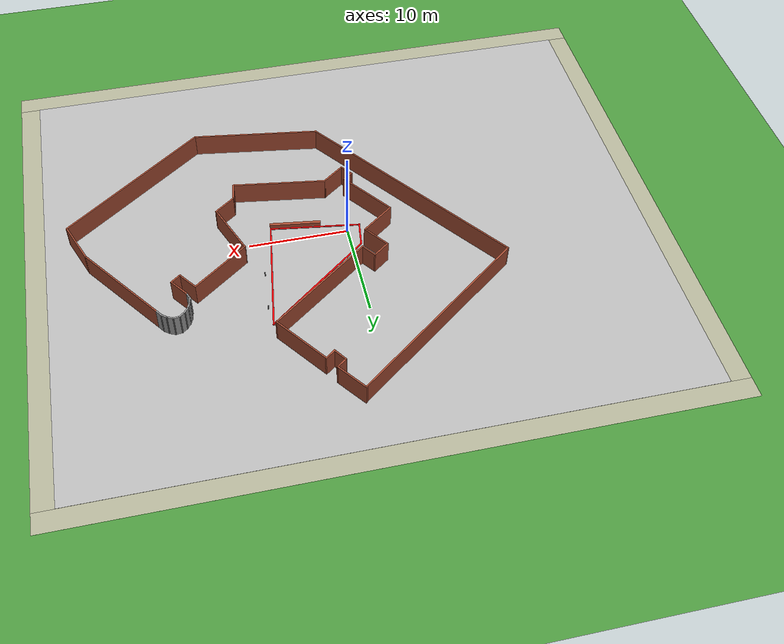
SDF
<sdf version="1.6">
 <world name="default">
  <physics name="default_physics" default="0" type="ode">
   <ode>
    <solver>
     <type>quick</type>
     <iters>100</iters>
     <sor>1</sor>
     <use_dynamic_moi_rescaling>0</use_dynamic_moi_rescaling>
    </solver>
    <constraints>
     <cfm>0</cfm>
     <erp>0.2</erp>
     <contact_max_correcting_vel>0.1</contact_max_correcting_vel>
     <contact_surface_layer>0</contact_surface_layer>
    </constraints>
   </ode>
   <real_time_update_rate>0</real_time_update_rate>
   <max_step_size>0.0025</max_step_size>
   <real_time_factor>1</real_time_factor>
  </physics>
  <light name="sun" type="directional">
   <pose>0 0 10 0 -0 0</pose>
   <diffuse>0.8 0.8 0.8 1</diffuse>
   <specular>0.2 0.2 0.2 1</specular>
   <attenuation>
    <range>1000</range>
    <constant>0.9</constant>
    <linear>0.01</linear>
    <quadratic>0.001</quadratic>
   </attenuation>
   <direction>-0.5 0.1 -0.9</direction>
  </light>
  <model name="ground_plane">
   <static>1</static>
   <link name="link">
    <collision name="collision">
     <geometry><plane><normal>0 0 1</normal><size>5000 5000</size></plane></geometry>
     <surface><friction><ode><mu>1</mu><mu2>1</mu2></ode></friction></surface>
    </collision>
    <visual name="grass">
     <pose>0 0 -0.1 0 -0 0</pose>
     <cast_shadows>0</cast_shadows>
     <geometry><plane><normal>0 0 0</normal><size>5000 5000</size></plane></geometry>
     <material>
      <script><uri>file://media/materials/scripts/gazebo.material</uri><name>Gazebo/Grass</name></script>
     </material>
    </visual>
   </link>
  </model>
  <gravity>0 0 -9.8</gravity>
  <magnetic_field>6e-06 2.3e-05 -4.2e-05</magnetic_field>
  <atmosphere type="adiabatic"/>
  <scene><ambient>0.4 0.4 0.4 1</ambient><background>0.7 0.7 0.7 1</background><shadows>1</shadows></scene>
  <spherical_coordinates>
   <surface_model>EARTH_WGS84</surface_model>
   <latitude_deg>0</latitude_deg>
   <longitude_deg>0</longitude_deg>
   <elevation>0</elevation>
   <heading_deg>0</heading_deg>
  </spherical_coordinates>
  <model name="robocup_3d_field">
   <static>1</static>
   <link name="field">
    <pose>0 0 0.01 0 -0 0</pose>
    <collision name="collision">
     <geometry><plane><normal>0 0 1</normal><size>30 20</size></plane></geometry>
     <surface><friction><ode><mu>100</mu><mu2>50</mu2></ode></friction></surface>
    </collision>
    <visual name="base1">
     <pose>0 26 0.001 0 -0 0</pose>
     <cast_shadows>0</cast_shadows>
     <geometry><plane><normal>0 0 1</normal><size>64 2</size></plane></geometry>
     <material>
      <script><uri>file://media/materials/scripts/gazebo.material</uri><name>Gazebo/Residential</name></script>
     </material>
    </visual>
    <visual name="base2">
     <pose>0 -26 0.001 0 -0 0</pose>
     <cast_shadows>0</cast_shadows>
     <geometry><plane><normal>0 0 1</normal><size>64 2</size></plane></geometry>
     <material>
      <script><uri>file://media/materials/scripts/gazebo.material</uri><name>Gazebo/Residential</name></script>
     </material>
    </visual>
    <visual name="base3">
     <pose>31 0 0.001 0 -0 0</pose>
     <cast_shadows>0</cast_shadows>
     <geometry><plane><normal>0 0 1</normal><size>2 50</size></plane></geometry>
     <material>
      <script><uri>file://media/materials/scripts/gazebo.material</uri><name>Gazebo/Residential</name></script>
     </material>
    </visual>
    <visual name="base4">
     <pose>-31 0 0.001 0 -0 0</pose>
     <cast_shadows>0</cast_shadows>
     <geometry><plane><normal>0 0 1</normal><size>2 50</size></plane></geometry>
     <material>
      <script><uri>file://media/materials/scripts/gazebo.material</uri><name>Gazebo/Residential</name></script>
     </material>
    </visual>
    <visual name="carpet">
     <cast_shadows>0</cast_shadows>
     <geometry><plane><normal>0 0 1</normal><size>60 50</size></plane></geometry>
     <material>
      <script>
       <uri>model://robocup_3Dsim_field/materials/scripts/</uri>
       <uri>model://robocup_3Dsim_field/materials/textures/</uri>
       <name>RoboCup/Granite</name>
      </script>
     </material>
    </visual>
   </link>
   <pose>0.007311 -0.081077 0 0 -0 0</pose>
  </model>
  <model name="CompBounds">
   <pose>3.96099 4.73051 0 0 -0 1.43129</pose>
   <link name="Wall_11">
    <collision name="Wall_11_Collision">
     <geometry><box><size>9.144 0.15 0.1</size></box></geometry>
     <pose>0 0 0.05 0 -0 0</pose>
    </collision>
    <visual name="Wall_11_Visual">
     <pose>0 0 0.05 0 -0 0</pose>
     <geometry><box><size>9.144 0.15 0.1</size></box></geometry>
     <material>
      <script><uri>file://media/materials/scripts/gazebo.material</uri><name>Gazebo/Grey</name></script>
      <ambient>1 0 0.0156863 1</ambient>
     </material>
     <meta><layer>0</layer></meta>
    </visual>
    <pose>-6.03653 0 0 0 0 -1.5708</pose>
   </link>
   <link name="Wall_13">
    <collision name="Wall_13_Collision">
     <geometry><box><size>12.192 0.15 0.1</size></box></geometry>
     <pose>0 0 0.05 0 -0 0</pose>
    </collision>
    <visual name="Wall_13_Visual">
     <pose>0 0 0.05 0 -0 0</pose>
     <geometry><box><size>12.192 0.15 0.1</size></box></geometry>
     <material>
      <script><uri>file://media/materials/scripts/gazebo.material</uri><name>Gazebo/Grey</name></script>
      <ambient>1 0 0.0156863 1</ambient>
     </material>
     <meta><layer>0</layer></meta>
    </visual>
    <pose>-0.015526 -4.497 0 0 -0 0</pose>
   </link>
   <link name="Wall_15">
    <collision name="Wall_15_Collision">
     <geometry><box><size>13.1952 0.15 0.1</size></box></geometry>
     <pose>0 0 0.05 0 -0 0</pose>
    </collision>
    <visual name="Wall_15_Visual">
     <pose>0 0 0.05 0 -0 0</pose>
     <geometry><box><size>13.1952 0.15 0.1</size></box></geometry>
     <material>
      <script><uri>file://media/materials/scripts/gazebo.material</uri><name>Gazebo/Grey</name></script>
      <ambient>1 0 0.0156863 1</ambient>
     </material>
     <meta><layer>0</layer></meta>
    </visual>
    <pose>1.28097 0 0 0 -0 2.38086</pose>
   </link>
   <link name="Wall_9">
    <collision name="Wall_9_Collision">
     <geometry><box><size>2.743 0.15 0.1</size></box></geometry>
     <pose>0 0 0.05 0 -0 0</pose>
    </collision>
    <visual name="Wall_9_Visual">
     <pose>0 0 0.05 0 -0 0</pose>
     <geometry><box><size>2.743 0.15 0.1</size></box></geometry>
     <material>
      <script><uri>file://media/materials/scripts/gazebo.material</uri><name>Gazebo/Grey</name></script>
      <ambient>1 0 0.0156863 1</ambient>
     </material>
     <meta><layer>0</layer></meta>
    </visual>
    <pose>-4.74003 4.497 0 0 -0 0</pose>
   </link>
   <static>1</static>
  </model>
  <model name="EngBusBldg">
   <pose>6.75813 3.12536 0 0 -0 1.42972</pose>
   <link name="Wall_17">
    <collision name="Wall_17_Collision">
     <geometry><box><size>12.25 0.15 2.5</size></box></geometry>
     <pose>0 0 1.25 0 -0 0</pose>
    </collision>
    <visual name="Wall_17_Visual">
     <pose>0 0 1.25 0 -0 0</pose>
     <geometry><box><size>12.25 0.15 2.5</size></box></geometry>
     <material>
      <script><uri>file://media/materials/scripts/gazebo.material</uri><name>Gazebo/Bricks</name></script>
      <ambient>1 1 1 1</ambient>
     </material>
     <meta><layer>0</layer></meta>
    </visual>
    <pose>4.46905 3.12636 0 0 0 -0.785398</pose>
   </link>
   <link name="Wall_19">
    <collision name="Wall_19_Collision">
     <geometry><box><size>1.75 0.15 2.5</size></box></geometry>
     <pose>0 0 1.25 0 -0 0</pose>
    </collision>
    <visual name="Wall_19_Visual">
     <pose>0 0 1.25 0 -0 0</pose>
     <geometry><box><size>1.75 0.15 2.5</size></box></geometry>
     <material>
      <script><uri>file://media/materials/scripts/gazebo.material</uri><name>Gazebo/Bricks</name></script>
      <ambient>1 1 1 1</ambient>
     </material>
     <meta><layer>0</layer></meta>
    </visual>
    <pose>0.756547 7.97036 0 0 -0 0.78584</pose>
   </link>
   <link name="Wall_20">
    <collision name="Wall_20_Collision">
     <geometry><box><size>2 0.15 2.5</size></box></geometry>
     <pose>0 0 1.25 0 -0 0</pose>
    </collision>
    <visual name="Wall_20_Visual">
     <pose>0 0 1.25 0 -0 0</pose>
     <geometry><box><size>2 0.15 2.5</size></box></geometry>
     <material>
      <script><uri>file://media/materials/scripts/gazebo.material</uri><name>Gazebo/Bricks</name></script>
      <ambient>1 1 1 1</ambient>
     </material>
     <meta><layer>0</layer></meta>
    </visual>
    <pose>0.668047 9.19036 0 0 -0 2.35619</pose>
   </link>
   <link name="Wall_21">
    <collision name="Wall_21_Collision">
     <geometry><box><size>3 0.15 2.5</size></box></geometry>
     <pose>0 0 1.25 0 -0 0</pose>
    </collision>
    <visual name="Wall_21_Visual">
     <pose>0 0 1.25 0 -0 0</pose>
     <geometry><box><size>3 0.15 2.5</size></box></geometry>
     <material>
      <script><uri>file://media/materials/scripts/gazebo.material</uri><name>Gazebo/Bricks</name></script>
      <ambient>1 1 1 1</ambient>
     </material>
     <meta><layer>0</layer></meta>
    </visual>
    <pose>-0.993453 8.83636 0 0 0 -2.35595</pose>
   </link>
   <link name="Wall_22">
    <collision name="Wall_22_Collision">
     <geometry><box><size>4 0.15 2.5</size></box></geometry>
     <pose>0 0 1.25 0 -0 0</pose>
    </collision>
    <visual name="Wall_22_Visual">
     <pose>0 0 1.25 0 -0 0</pose>
     <geometry><box><size>4 0.15 2.5</size></box></geometry>
     <material>
      <script><uri>file://media/materials/scripts/gazebo.material</uri><name>Gazebo/Bricks</name></script>
      <ambient>1 1 1 1</ambient>
     </material>
     <meta><layer>0</layer></meta>
    </visual>
    <pose>-3.36245 9.18986 0 0 -0 2.35619</pose>
   </link>
   <link name="Wall_24">
    <collision name="Wall_24_Collision">
     <geometry><box><size>6.25 0.15 2.5</size></box></geometry>
     <pose>0 0 1.25 0 -0 0</pose>
    </collision>
    <visual name="Wall_24_Visual">
     <pose>0 0 1.25 0 -0 0</pose>
     <geometry><box><size>6.25 0.15 2.5</size></box></geometry>
     <material>
      <script><uri>file://media/materials/scripts/gazebo.material</uri><name>Gazebo/Bricks</name></script>
      <ambient>1 1 1 1</ambient>
     </material>
     <meta><layer>0</layer></meta>
    </visual>
    <pose>-6.88045 8.39436 0 0 0 -2.35608</pose>
   </link>
   <link name="Wall_25">
    <collision name="Wall_25_Collision">
     <geometry><box><size>1.25 0.15 2.5</size></box></geometry>
     <pose>0 0 1.25 0 -0 0</pose>
    </collision>
    <visual name="Wall_25_Visual">
     <pose>0 0 1.25 0 -0 0</pose>
     <geometry><box><size>1.25 0.15 2.5</size></box></geometry>
     <material>
      <script><uri>file://media/materials/scripts/gazebo.material</uri><name>Gazebo/Bricks</name></script>
      <ambient>1 1 1 1</ambient>
     </material>
     <meta><layer>0</layer></meta>
    </visual>
    <pose>-9.42595 6.62636 0 0 -0 2.35619</pose>
   </link>
   <link name="Wall_26">
    <collision name="Wall_26_Collision">
     <geometry><box><size>1.5 0.15 2.5</size></box></geometry>
     <pose>0 0 1.25 0 -0 0</pose>
    </collision>
    <visual name="Wall_26_Visual">
     <pose>0 0 1.25 0 -0 0</pose>
     <geometry><box><size>1.5 0.15 2.5</size></box></geometry>
     <material>
      <script><uri>file://media/materials/scripts/gazebo.material</uri><name>Gazebo/Bricks</name></script>
      <ambient>1 1 1 1</ambient>
     </material>
     <meta><layer>0</layer></meta>
    </visual>
    <pose>-10.292 6.53836 0 0 0 -2.35619</pose>
   </link>
   <link name="Wall_27">
    <collision name="Wall_27_Collision">
     <geometry><box><size>2.75 0.15 2.5</size></box></geometry>
     <pose>0 0 1.25 0 -0 0</pose>
    </collision>
    <visual name="Wall_27_Visual">
     <pose>0 0 1.25 0 -0 0</pose>
     <geometry><box><size>2.75 0.15 2.5</size></box></geometry>
     <material>
      <script><uri>file://media/materials/scripts/gazebo.material</uri><name>Gazebo/Bricks</name></script>
      <ambient>1 1 1 1</ambient>
     </material>
     <meta><layer>0</layer></meta>
    </visual>
    <pose>-9.84995 5.14186 0 0 0 -0.78567</pose>
   </link>
   <link name="Wall_40">
    <collision name="Wall_40_Collision">
     <geometry><box><size>9.5 0.15 2.5</size></box></geometry>
     <pose>0 0 1.25 0 -0 0</pose>
    </collision>
    <visual name="Wall_40_Visual">
     <pose>0 0 1.25 0 -0 0</pose>
     <geometry><box><size>9.5 0.15 2.5</size></box></geometry>
     <material>
      <script><uri>file://media/materials/scripts/gazebo.material</uri><name>Gazebo/Bricks</name></script>
      <ambient>1 1 1 1</ambient>
     </material>
     <meta><layer>0</layer></meta>
    </visual>
    <pose>-8.93095 -0.452644 0 0 0 -1.5708</pose>
   </link>
   <link name="Wall_41">
    <collision name="Wall_41_Collision">
     <geometry><box><size>2 0.15 2.5</size></box></geometry>
     <pose>0 0 1.25 0 -0 0</pose>
    </collision>
    <visual name="Wall_41_Visual">
     <pose>0 0 1.25 0 -0 0</pose>
     <geometry><box><size>2 0.15 2.5</size></box></geometry>
     <material>
      <script><uri>file://media/materials/scripts/gazebo.material</uri><name>Gazebo/Bricks</name></script>
      <ambient>1 1 1 1</ambient>
     </material>
     <meta><layer>0</layer></meta>
    </visual>
    <pose>-8.00595 -5.12764 0 0 -0 0</pose>
   </link>
   <link name="Wall_42">
    <collision name="Wall_42_Collision">
     <geometry><box><size>2.5 0.15 2.5</size></box></geometry>
     <pose>0 0 1.25 0 -0 0</pose>
    </collision>
    <visual name="Wall_42_Visual">
     <pose>0 0 1.25 0 -0 0</pose>
     <geometry><box><size>2.5 0.15 2.5</size></box></geometry>
     <material>
      <script><uri>file://media/materials/scripts/gazebo.material</uri><name>Gazebo/Bricks</name></script>
      <ambient>1 1 1 1</ambient>
     </material>
     <meta><layer>0</layer></meta>
    </visual>
    <pose>-6.24995 -5.95814 0 0 0 -0.785097</pose>
   </link>
   <link name="Wall_43">
    <collision name="Wall_43_Collision">
     <geometry><box><size>5.75 0.15 2.5</size></box></geometry>
     <pose>0 0 1.25 0 -0 0</pose>
    </collision>
    <visual name="Wall_43_Visual">
     <pose>0 0 1.25 0 -0 0</pose>
     <geometry><box><size>5.75 0.15 2.5</size></box></geometry>
     <material>
      <script><uri>file://media/materials/scripts/gazebo.material</uri><name>Gazebo/Bricks</name></script>
      <ambient>1 1 1 1</ambient>
     </material>
     <meta><layer>0</layer></meta>
    </visual>
    <pose>-2.99445 -5.38864 0 0 -0 0.523665</pose>
   </link>
   <link name="Wall_45">
    <collision name="Wall_45_Collision">
     <geometry><box><size>6.75 0.15 2.5</size></box></geometry>
     <pose>0 0 1.25 0 -0 0</pose>
    </collision>
    <visual name="Wall_45_Visual">
     <pose>0 0 1.25 0 -0 0</pose>
     <geometry><box><size>6.75 0.15 2.5</size></box></geometry>
     <material>
      <script><uri>file://media/materials/scripts/gazebo.material</uri><name>Gazebo/Bricks</name></script>
      <ambient>1 1 1 1</ambient>
     </material>
     <meta><layer>0</layer></meta>
    </visual>
    <pose>1.76355 -6.32214 0 0 0 -0.785398</pose>
   </link>
   <link name="Wall_47">
    <collision name="Wall_47_Collision">
     <geometry><box><size>2.25 0.15 2.5</size></box></geometry>
     <pose>0 0 1.25 0 -0 0</pose>
    </collision>
    <visual name="Wall_47_Visual">
     <pose>0 0 1.25 0 -0 0</pose>
     <geometry><box><size>2.25 0.15 2.5</size></box></geometry>
     <material>
      <script><uri>file://media/materials/scripts/gazebo.material</uri><name>Gazebo/Bricks</name></script>
      <ambient>1 1 1 1</ambient>
     </material>
     <meta><layer>0</layer></meta>
    </visual>
    <pose>3.35455 -9.39814 0 0 0 -2.35619</pose>
   </link>
   <link name="Wall_48">
    <collision name="Wall_48_Collision">
     <geometry><box><size>1.25 0.15 2.5</size></box></geometry>
     <pose>0 0 1.25 0 -0 0</pose>
    </collision>
    <visual name="Wall_48_Visual">
     <pose>0 0 1.25 0 -0 0</pose>
     <geometry><box><size>1.25 0.15 2.5</size></box></geometry>
     <material>
      <script><uri>file://media/materials/scripts/gazebo.material</uri><name>Gazebo/Bricks</name></script>
      <ambient>1 1 1 1</ambient>
     </material>
     <meta><layer>0</layer></meta>
    </visual>
    <pose>3.00105 -10.5296 0 0 0 -0.785398</pose>
   </link>
   <link name="Wall_49">
    <collision name="Wall_49_Collision">
     <geometry><box><size>2.25 0.15 2.5</size></box></geometry>
     <pose>0 0 1.25 0 -0 0</pose>
    </collision>
    <visual name="Wall_49_Visual">
     <pose>0 0 1.25 0 -0 0</pose>
     <geometry><box><size>2.25 0.15 2.5</size></box></geometry>
     <material>
      <script><uri>file://media/materials/scripts/gazebo.material</uri><name>Gazebo/Bricks</name></script>
      <ambient>1 1 1 1</ambient>
     </material>
     <meta><layer>0</layer></meta>
    </visual>
    <pose>4.13255 -10.1761 0 0 -0 0.785398</pose>
   </link>
   <link name="Wall_51">
    <collision name="Wall_51_Collision">
     <geometry><box><size>0.75 0.15 2.5</size></box></geometry>
     <pose>0 0 1.25 0 -0 0</pose>
    </collision>
    <visual name="Wall_51_Visual">
     <pose>0 0 1.25 0 -0 0</pose>
     <geometry><box><size>0.75 0.15 2.5</size></box></geometry>
     <material>
      <script><uri>file://media/materials/scripts/gazebo.material</uri><name>Gazebo/Grey</name></script>
      <ambient>0 0 0 1</ambient>
     </material>
     <meta><layer>0</layer></meta>
    </visual>
    <pose>5.13496 -9.28375 0 0 -0 0.52313</pose>
   </link>
   <link name="Wall_53">
    <collision name="Wall_53_Collision">
     <geometry><box><size>0.75 0.15 2.5</size></box></geometry>
     <pose>0 0 1.25 0 -0 0</pose>
    </collision>
    <visual name="Wall_53_Visual">
     <pose>0 0 1.25 0 -0 0</pose>
     <geometry><box><size>0.75 0.15 2.5</size></box></geometry>
     <material>
      <script><uri>file://media/materials/scripts/gazebo.material</uri><name>Gazebo/Grey</name></script>
      <ambient>0 0 0 1</ambient>
     </material>
     <meta><layer>0</layer></meta>
    </visual>
    <pose>5.69487 -9.13385 0 0 -0 0</pose>
   </link>
   <link name="Wall_54">
    <collision name="Wall_54_Collision">
     <geometry><box><size>0.75 0.15 2.5</size></box></geometry>
     <pose>0 0 1.25 0 -0 0</pose>
    </collision>
    <visual name="Wall_54_Visual">
     <pose>0 0 1.25 0 -0 0</pose>
     <geometry><box><size>0.75 0.15 2.5</size></box></geometry>
     <material>
      <script><uri>file://media/materials/scripts/gazebo.material</uri><name>Gazebo/Grey</name></script>
      <ambient>0 0 0 1</ambient>
     </material>
     <meta><layer>0</layer></meta>
    </visual>
    <pose>6.28465 -9.21149 0 0 0 -0.261799</pose>
   </link>
   <link name="Wall_55">
    <collision name="Wall_55_Collision">
     <geometry><box><size>0.75 0.15 2.5</size></box></geometry>
     <pose>0 0 1.25 0 -0 0</pose>
    </collision>
    <visual name="Wall_55_Visual">
     <pose>0 0 1.25 0 -0 0</pose>
     <geometry><box><size>0.75 0.15 2.5</size></box></geometry>
     <material>
      <script><uri>file://media/materials/scripts/gazebo.material</uri><name>Gazebo/Grey</name></script>
      <ambient>0 0 0 1</ambient>
     </material>
     <meta><layer>0</layer></meta>
    </visual>
    <pose>6.83423 -9.43914 0 0 0 -0.523599</pose>
   </link>
   <link name="Wall_56">
    <collision name="Wall_56_Collision">
     <geometry><box><size>0.75 0.15 2.5</size></box></geometry>
     <pose>0 0 1.25 0 -0 0</pose>
    </collision>
    <visual name="Wall_56_Visual">
     <pose>0 0 1.25 0 -0 0</pose>
     <geometry><box><size>0.75 0.15 2.5</size></box></geometry>
     <material>
      <script><uri>file://media/materials/scripts/gazebo.material</uri><name>Gazebo/Grey</name></script>
      <ambient>0 0 0 1</ambient>
     </material>
     <meta><layer>0</layer></meta>
    </visual>
    <pose>7.30617 -9.80127 0 0 0 -0.785398</pose>
   </link>
   <link name="Wall_57">
    <collision name="Wall_57_Collision">
     <geometry><box><size>0.75 0.15 2.5</size></box></geometry>
     <pose>0 0 1.25 0 -0 0</pose>
    </collision>
    <visual name="Wall_57_Visual">
     <pose>0 0 1.25 0 -0 0</pose>
     <geometry><box><size>0.75 0.15 2.5</size></box></geometry>
     <material>
      <script><uri>file://media/materials/scripts/gazebo.material</uri><name>Gazebo/Grey</name></script>
      <ambient>0 0 0 1</ambient>
     </material>
     <meta><layer>0</layer></meta>
    </visual>
    <pose>7.59595 -10.3032 0 0 0 -1.309</pose>
   </link>
   <link name="Wall_59">
    <collision name="Wall_59_Collision">
     <geometry><box><size>0.75 0.15 2.5</size></box></geometry>
     <pose>0 0 1.25 0 -0 0</pose>
    </collision>
    <visual name="Wall_59_Visual">
     <pose>0 0 1.25 0 -0 0</pose>
     <geometry><box><size>0.75 0.15 2.5</size></box></geometry>
     <material>
      <script><uri>file://media/materials/scripts/gazebo.material</uri><name>Gazebo/Grey</name></script>
      <ambient>0 0 0 1</ambient>
     </material>
     <meta><layer>0</layer></meta>
    </visual>
    <pose>7.59595 -10.8827 0 0 0 -1.8326</pose>
   </link>
   <link name="Wall_60">
    <collision name="Wall_60_Collision">
     <geometry><box><size>0.75 0.15 2.5</size></box></geometry>
     <pose>0 0 1.25 0 -0 0</pose>
    </collision>
    <visual name="Wall_60_Visual">
     <pose>0 0 1.25 0 -0 0</pose>
     <geometry><box><size>0.75 0.15 2.5</size></box></geometry>
     <material>
      <script><uri>file://media/materials/scripts/gazebo.material</uri><name>Gazebo/Grey</name></script>
      <ambient>0 0 0 1</ambient>
     </material>
     <meta><layer>0</layer></meta>
    </visual>
    <pose>7.3683 -11.4323 0 0 0 -2.0944</pose>
   </link>
   <link name="Wall_62">
    <collision name="Wall_62_Collision">
     <geometry><box><size>0.75 0.15 2.5</size></box></geometry>
     <pose>0 0 1.25 0 -0 0</pose>
    </collision>
    <visual name="Wall_62_Visual">
     <pose>0 0 1.25 0 -0 0</pose>
     <geometry><box><size>0.75 0.15 2.5</size></box></geometry>
     <material>
      <script><uri>file://media/materials/scripts/gazebo.material</uri><name>Gazebo/Grey</name></script>
      <ambient>0 0 0 1</ambient>
     </material>
     <meta><layer>0</layer></meta>
    </visual>
    <pose>7.00618 -11.9044 0 0 0 -2.35589</pose>
   </link>
   <link name="Wall_63">
    <collision name="Wall_63_Collision">
     <geometry><box><size>10.25 0.15 2.5</size></box></geometry>
     <pose>0 0 1.25 0 -0 0</pose>
    </collision>
    <visual name="Wall_63_Visual">
     <pose>0 0 1.25 0 -0 0</pose>
     <geometry><box><size>10.25 0.15 2.5</size></box></geometry>
     <material>
      <script><uri>file://media/materials/scripts/gazebo.material</uri><name>Gazebo/Bricks</name></script>
      <ambient>1 1 1 1</ambient>
     </material>
     <meta><layer>0</layer></meta>
    </visual>
    <pose>3.22305 -15.6876 0 0 0 -2.35619</pose>
   </link>
   <link name="Wall_65">
    <collision name="Wall_65_Collision">
     <geometry><box><size>6.25 0.15 2.5</size></box></geometry>
     <pose>0 0 1.25 0 -0 0</pose>
    </collision>
    <visual name="Wall_65_Visual">
     <pose>0 0 1.25 0 -0 0</pose>
     <geometry><box><size>6.25 0.15 2.5</size></box></geometry>
     <material>
      <script><uri>file://media/materials/scripts/gazebo.material</uri><name>Gazebo/Bricks</name></script>
      <ambient>1 1 1 1</ambient>
     </material>
     <meta><layer>0</layer></meta>
    </visual>
    <pose>10.9035 1.00536 0 0 -0 0.785514</pose>
   </link>
   <link name="Wall_67">
    <collision name="Wall_67_Collision">
     <geometry><box><size>1.25 0.15 2.5</size></box></geometry>
     <pose>0 0 1.25 0 -0 0</pose>
    </collision>
    <visual name="Wall_67_Visual">
     <pose>0 0 1.25 0 -0 0</pose>
     <geometry><box><size>1.25 0.15 2.5</size></box></geometry>
     <material>
      <script><uri>file://media/materials/scripts/gazebo.material</uri><name>Gazebo/Bricks</name></script>
      <ambient>1 1 1 1</ambient>
     </material>
     <meta><layer>0</layer></meta>
    </visual>
    <pose>12.671 3.55086 0 0 -0 2.35684</pose>
   </link>
   <link name="Wall_68">
    <collision name="Wall_68_Collision">
     <geometry><box><size>1.53928 0.15 2.5</size></box></geometry>
     <pose>0 0 1.25 0 -0 0</pose>
    </collision>
    <visual name="Wall_68_Visual">
     <pose>0 0 1.25 0 -0 0</pose>
     <geometry><box><size>1.53928 0.15 2.5</size></box></geometry>
     <material>
      <script><uri>file://media/materials/scripts/gazebo.material</uri><name>Gazebo/Bricks</name></script>
      <ambient>0 0 0 1</ambient>
     </material>
     <meta><layer>0</layer></meta>
    </visual>
    <pose>12.7865 4.41686 0 0 -0 0.75791</pose>
   </link>
   <link name="Wall_69">
    <collision name="Wall_69_Collision">
     <geometry><box><size>1.24991 0.15 2.5</size></box></geometry>
     <pose>0 0 1.25 0 -0 0</pose>
    </collision>
    <visual name="Wall_69_Visual">
     <pose>0 0 1.25 0 -0 0</pose>
     <geometry><box><size>1.24991 0.15 2.5</size></box></geometry>
     <material>
      <script><uri>file://media/materials/scripts/gazebo.material</uri><name>Gazebo/Bricks</name></script>
      <ambient>0 0 0 1</ambient>
     </material>
     <meta><layer>0</layer></meta>
    </visual>
    <pose>13.6795 4.50536 0 0 0 -0.786041</pose>
   </link>
   <link name="Wall_70">
    <collision name="Wall_70_Collision">
     <geometry><box><size>3.4626 0.15 2.5</size></box></geometry>
     <pose>0 0 1.25 0 -0 0</pose>
    </collision>
    <visual name="Wall_70_Visual">
     <pose>0 0 1.25 0 -0 0</pose>
     <geometry><box><size>3.4626 0.15 2.5</size></box></geometry>
     <material>
      <script><uri>file://media/materials/scripts/gazebo.material</uri><name>Gazebo/Bricks</name></script>
      <ambient>0 0 0 1</ambient>
     </material>
     <meta><layer>0</layer></meta>
    </visual>
    <pose>15.2255 5.30086 0 0 -0 0.796926</pose>
   </link>
   <link name="Wall_73">
    <collision name="Wall_73_Collision">
     <geometry><box><size>4.5 0.15 2.5</size></box></geometry>
     <pose>0 0 1.25 0 -0 0</pose>
    </collision>
    <visual name="Wall_73_Visual">
     <pose>0 0 1.25 0 -0 0</pose>
     <geometry><box><size>4.5 0.15 2.5</size></box></geometry>
     <material>
      <script><uri>file://media/materials/scripts/gazebo.material</uri><name>Gazebo/Bricks</name></script>
      <ambient>0 0 0 1</ambient>
     </material>
     <meta><layer>0</layer></meta>
    </visual>
    <pose>-2.23145 -20.3461 0 0 0 -2.61797</pose>
   </link>
   <link name="Wall_75">
    <collision name="Wall_75_Collision">
     <geometry><box><size>17.5 0.15 2.5</size></box></geometry>
     <pose>0 0 1.25 0 -0 0</pose>
    </collision>
    <visual name="Wall_75_Visual">
     <pose>0 0 1.25 0 -0 0</pose>
     <geometry><box><size>17.5 0.15 2.5</size></box></geometry>
     <material>
      <script><uri>file://media/materials/scripts/gazebo.material</uri><name>Gazebo/Bricks</name></script>
      <ambient>1 1 1 1</ambient>
     </material>
     <meta><layer>0</layer></meta>
    </visual>
    <pose>-10.249 -15.2991 0 0 -0 2.35615</pose>
   </link>
   <link name="Wall_76">
    <collision name="Wall_76_Collision">
     <geometry><box><size>13 0.15 2.5</size></box></geometry>
     <pose>0 0 1.25 0 -0 0</pose>
    </collision>
    <visual name="Wall_76_Visual">
     <pose>0 0 1.25 0 -0 0</pose>
     <geometry><box><size>13 0.15 2.5</size></box></geometry>
     <material>
      <script><uri>file://media/materials/scripts/gazebo.material</uri><name>Gazebo/Bricks</name></script>
      <ambient>1 1 1 1</ambient>
     </material>
     <meta><layer>0</layer></meta>
    </visual>
    <pose>-16.383 -2.73964 0 0 -0 1.5708</pose>
   </link>
   <link name="Wall_77">
    <collision name="Wall_77_Collision">
     <geometry><box><size>25.25 0.15 2.5</size></box></geometry>
     <pose>0 0 1.25 0 -0 0</pose>
    </collision>
    <visual name="Wall_77_Visual">
     <pose>0 0 1.25 0 -0 0</pose>
     <geometry><box><size>25.25 0.15 2.5</size></box></geometry>
     <material>
      <script><uri>file://media/materials/scripts/gazebo.material</uri><name>Gazebo/Bricks</name></script>
      <ambient>1 1 1 1</ambient>
     </material>
     <meta><layer>0</layer></meta>
    </visual>
    <pose>-7.50895 12.5594 0 0 -0 0.785398</pose>
   </link>
   <link name="Wall_79">
    <collision name="Wall_79_Collision">
     <geometry><box><size>21.25 0.15 2.5</size></box></geometry>
     <pose>0 0 1.25 0 -0 0</pose>
    </collision>
    <visual name="Wall_79_Visual">
     <pose>0 0 1.25 0 -0 0</pose>
     <geometry><box><size>21.25 0.15 2.5</size></box></geometry>
     <material>
      <script><uri>file://media/materials/scripts/gazebo.material</uri><name>Gazebo/Bricks</name></script>
      <ambient>1 1 1 1</ambient>
     </material>
     <meta><layer>0</layer></meta>
    </visual>
    <pose>8.82505 13.9734 0 0 0 -0.785398</pose>
   </link>
   <static>1</static>
  </model>
  <model name="unit_cylinder_clone">
   <pose>9.43068 8.11868 0.298216 0 -1e-06 0.001975</pose>
   <link name="link">
    <inertial>
     <mass>1</mass>
     <inertia><ixx>0.145833</ixx><ixy>0</ixy><ixz>0</ixz><iyy>0.145833</iyy><iyz>0</iyz><izz>0.125</izz></inertia>
    </inertial>
    <collision name="collision">
     <geometry><cylinder><radius>0.0548593</radius><length>0.576504</length></cylinder></geometry>
    </collision>
    <visual name="visual">
     <geometry><cylinder><radius>0.0548593</radius><length>0.576504</length></cylinder></geometry>
     <material>
      <script><name>Gazebo/Grey</name><uri>file://media/materials/scripts/gazebo.material</uri></script>
     </material>
    </visual>
   </link>
  </model>
  <model name="brickhalf">
   <pose>5.05759 -1.80217 0 0 0 -0.130671</pose>
   <link name="Wall_2">
    <collision name="Wall_2_Collision">
     <geometry><box><size>5.15 0.3 0.5</size></box></geometry>
     <pose>0 0 0.25 0 -0 0</pose>
    </collision>
    <visual name="Wall_2_Visual">
     <pose>0 0 0.25 0 -0 0</pose>
     <geometry><box><size>5.15 0.3 0.5</size></box></geometry>
     <material>
      <script><uri>file://media/materials/scripts/gazebo.material</uri><name>Gazebo/Bricks</name></script>
      <ambient>1 1 1 1</ambient>
     </material>
     <meta><layer>0</layer></meta>
    </visual>
   </link>
   <static>1</static>
  </model>
  <model name="unit_cylinder_clone_clone">
   <pose>9.08553 4.03422 0.298216 0 -1e-06 0.001974</pose>
   <link name="link">
    <inertial>
     <mass>1</mass>
     <inertia><ixx>0.145833</ixx><ixy>0</ixy><ixz>0</ixz><iyy>0.145833</iyy><iyz>0</iyz><izz>0.125</izz></inertia>
    </inertial>
    <collision name="collision">
     <geometry><cylinder><radius>0.0548593</radius><length>0.576504</length></cylinder></geometry>
    </collision>
    <visual name="visual">
     <geometry><cylinder><radius>0.0548593</radius><length>0.576504</length></cylinder></geometry>
     <material>
      <script><name>Gazebo/Grey</name><uri>file://media/materials/scripts/gazebo.material</uri></script>
     </material>
    </visual>
   </link>
  </model>
 </world>
</sdf>
